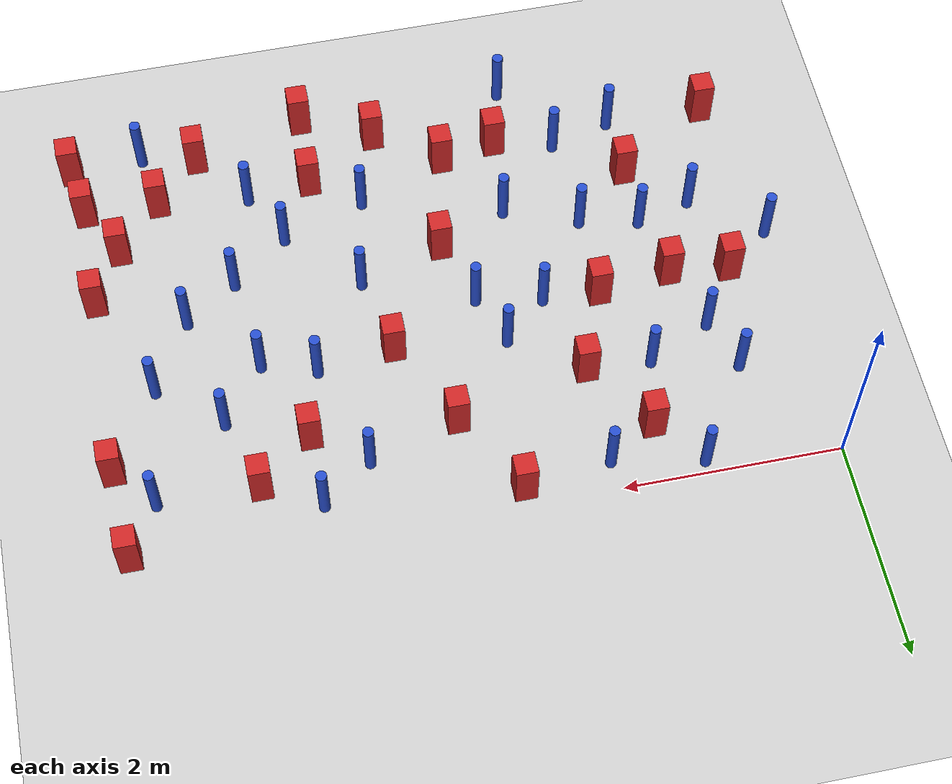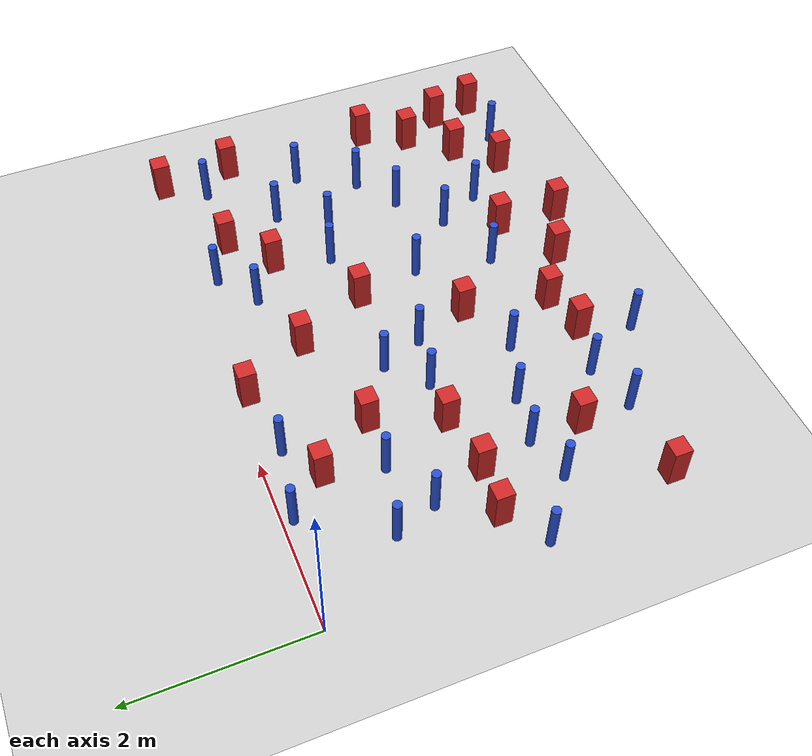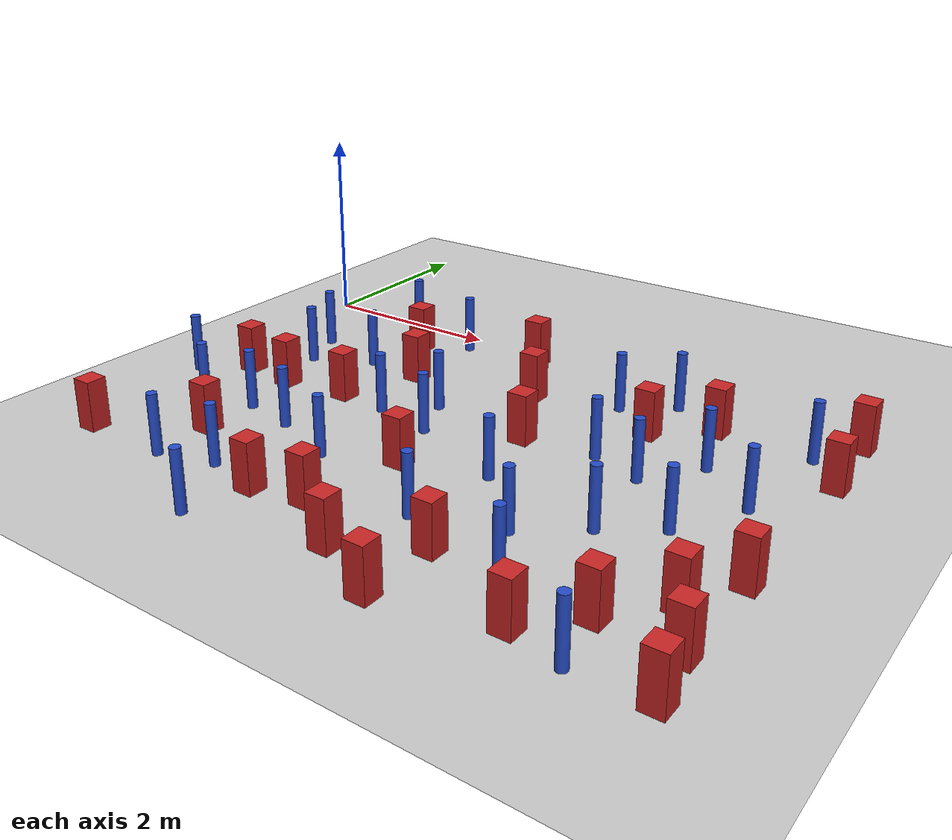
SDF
<sdf version="1.6">
 <world name="default">
  <model name="ground_plane">
   <static>1</static>
   <link name="link">
    <collision name="collision">
     <geometry><plane><normal>0 0 1</normal><size>100 100</size></plane></geometry>
     <surface><friction><ode><mu>100</mu><mu2>50</mu2></ode></friction></surface>
    </collision>
    <visual name="visual">
     <cast_shadows>0</cast_shadows>
     <geometry><plane><normal>0 0 1</normal><size>100 100</size></plane></geometry>
     <material>
      <ambient>1.0 1.0 1.0 1.0</ambient>
      <diffuse>0.8 0.8 0.8 1.0</diffuse>
      <specular>0.01 0.01 0.01 1.000000</specular>
     </material>
    </visual>
   </link>
  </model>
  <model name="pole_obstacle5">
   <static>true</static>
   <pose>4.95172508571 -1.85118535402 -9.47619616065e-06 5.49618799738e-07 2.36310414071e-07 -1.55090534796e-07</pose>
   <link name="link">
    <pose>0 0 0.3 0 -0 0</pose>
    <inertial>
     <mass>1</mass>
     <inertia><ixx>0.145833</ixx><ixy>0</ixy><ixz>0</ixz><iyy>0.145833</iyy><iyz>0</iyz><izz>0.125</izz></inertia>
    </inertial>
    <collision name="collision">
     <geometry><cylinder><radius>0.05</radius><length>.6</length></cylinder></geometry>
    </collision>
    <visual name="visual">
     <geometry><cylinder><radius>0.05</radius><length>.6</length></cylinder></geometry>
     <material>
      <script><name>Gazebo/Blue</name><uri>file://media/materials/scripts/gazebo.material</uri></script>
     </material>
    </visual>
   </link>
  </model>
  <model name="pole_obstacle10">
   <static>true</static>
   <pose>1.45750841201 -1.19569166545 -9.47619616065e-06 5.49618799737e-07 2.36310414065e-07 -1.55090534798e-07</pose>
   <link name="link">
    <pose>0 0 0.3 0 -0 0</pose>
    <inertial>
     <mass>1</mass>
     <inertia><ixx>0.145833</ixx><ixy>0</ixy><ixz>0</ixz><iyy>0.145833</iyy><iyz>0</iyz><izz>0.125</izz></inertia>
    </inertial>
    <collision name="collision">
     <geometry><cylinder><radius>0.05</radius><length>.6</length></cylinder></geometry>
    </collision>
    <visual name="visual">
     <geometry><cylinder><radius>0.05</radius><length>.6</length></cylinder></geometry>
     <material>
      <script><name>Gazebo/Blue</name><uri>file://media/materials/scripts/gazebo.material</uri></script>
     </material>
    </visual>
   </link>
  </model>
  <model name="pole_obstacle17">
   <static>true</static>
   <pose>4.79481528149 -3.70649466461 -9.47619616065e-06 5.49618799738e-07 2.36310414051e-07 -1.55090534805e-07</pose>
   <link name="link">
    <pose>0 0 0.3 0 -0 0</pose>
    <inertial>
     <mass>1</mass>
     <inertia><ixx>0.145833</ixx><ixy>0</ixy><ixz>0</ixz><iyy>0.145833</iyy><iyz>0</iyz><izz>0.125</izz></inertia>
    </inertial>
    <collision name="collision">
     <geometry><cylinder><radius>0.05</radius><length>.6</length></cylinder></geometry>
    </collision>
    <visual name="visual">
     <geometry><cylinder><radius>0.05</radius><length>.6</length></cylinder></geometry>
     <material>
      <script><name>Gazebo/Blue</name><uri>file://media/materials/scripts/gazebo.material</uri></script>
     </material>
    </visual>
   </link>
  </model>
  <model name="square_post_obstacle16">
   <static>true</static>
   <pose>1.61154432074 -0.550613531907 -6.11067671241e-07 -5.50515727128e-06 -8.79689657224e-07 2.37013304536e-05</pose>
   <link name="link">
    <pose>0 0 0.25 0 -0 0</pose>
    <inertial>
     <mass>100</mass>
     <inertia>
      <ixx>0.166667</ixx>
      <ixy>0</ixy>
      <ixz>0</ixz>
      <iyy>0.166667</iyy>
      <iyz>0</iyz>
      <izz>0.166667</izz>
     </inertia>
    </inertial>
    <collision name="collision"><geometry><box><size>.2 .2 .5</size></box></geometry></collision>
    <visual name="visual">
     <geometry><box><size>.2 .2 .5</size></box></geometry>
     <material>
      <script><name>Gazebo/Red</name><uri>file://media/materials/scripts/gazebo.material</uri></script>
     </material>
    </visual>
   </link>
  </model>
  <model name="pole_obstacle21">
   <static>true</static>
   <pose>0.676874485909 -0.999603426647 -9.47619616065e-06 5.49618799737e-07 2.36310414059e-07 -1.55090534802e-07</pose>
   <link name="link">
    <pose>0 0 0.3 0 -0 0</pose>
    <inertial>
     <mass>1</mass>
     <inertia><ixx>0.145833</ixx><ixy>0</ixy><ixz>0</ixz><iyy>0.145833</iyy><iyz>0</iyz><izz>0.125</izz></inertia>
    </inertial>
    <collision name="collision">
     <geometry><cylinder><radius>0.05</radius><length>.6</length></cylinder></geometry>
    </collision>
    <visual name="visual">
     <geometry><cylinder><radius>0.05</radius><length>.6</length></cylinder></geometry>
     <material>
      <script><name>Gazebo/Blue</name><uri>file://media/materials/scripts/gazebo.material</uri></script>
     </material>
    </visual>
   </link>
  </model>
  <model name="pole_obstacle26">
   <static>true</static>
   <pose>1.23101191874 -0.114247584651 -9.47619616065e-06 5.49618799737e-07 2.36310414064e-07 -1.55090534798e-07</pose>
   <link name="link">
    <pose>0 0 0.3 0 -0 0</pose>
    <inertial>
     <mass>1</mass>
     <inertia><ixx>0.145833</ixx><ixy>0</ixy><ixz>0</ixz><iyy>0.145833</iyy><iyz>0</iyz><izz>0.125</izz></inertia>
    </inertial>
    <collision name="collision">
     <geometry><cylinder><radius>0.05</radius><length>.6</length></cylinder></geometry>
    </collision>
    <visual name="visual">
     <geometry><cylinder><radius>0.05</radius><length>.6</length></cylinder></geometry>
     <material>
      <script><name>Gazebo/Blue</name><uri>file://media/materials/scripts/gazebo.material</uri></script>
     </material>
    </visual>
   </link>
  </model>
  <model name="square_post_obstacle19">
   <static>true</static>
   <pose>6.34187313873 -0.164902449762 -6.11067671241e-07 -5.50515727128e-06 -8.79689657224e-07 2.37013304536e-05</pose>
   <link name="link">
    <pose>0 0 0.25 0 -0 0</pose>
    <inertial>
     <mass>100</mass>
     <inertia>
      <ixx>0.166667</ixx>
      <ixy>0</ixy>
      <ixz>0</ixz>
      <iyy>0.166667</iyy>
      <iyz>0</iyz>
      <izz>0.166667</izz>
     </inertia>
    </inertial>
    <collision name="collision"><geometry><box><size>.2 .2 .5</size></box></geometry></collision>
    <visual name="visual">
     <geometry><box><size>.2 .2 .5</size></box></geometry>
     <material>
      <script><name>Gazebo/Red</name><uri>file://media/materials/scripts/gazebo.material</uri></script>
     </material>
    </visual>
   </link>
  </model>
  <model name="square_post_obstacle22">
   <static>true</static>
   <pose>3.73659770727 -1.78353197545 -6.11067671241e-07 -5.50515727128e-06 -8.79689657224e-07 2.37013304536e-05</pose>
   <link name="link">
    <pose>0 0 0.25 0 -0 0</pose>
    <inertial>
     <mass>100</mass>
     <inertia>
      <ixx>0.166667</ixx>
      <ixy>0</ixy>
      <ixz>0</ixz>
      <iyy>0.166667</iyy>
      <iyz>0</iyz>
      <izz>0.166667</izz>
     </inertia>
    </inertial>
    <collision name="collision"><geometry><box><size>.2 .2 .5</size></box></geometry></collision>
    <visual name="visual">
     <geometry><box><size>.2 .2 .5</size></box></geometry>
     <material>
      <script><name>Gazebo/Red</name><uri>file://media/materials/scripts/gazebo.material</uri></script>
     </material>
    </visual>
   </link>
  </model>
  <model name="pole_obstacle34">
   <static>true</static>
   <pose>2.69496736804 -1.6706195588 -9.47619616065e-06 5.49618799737e-07 2.36310414072e-07 -1.55090534793e-07</pose>
   <link name="link">
    <pose>0 0 0.3 0 -0 0</pose>
    <inertial>
     <mass>1</mass>
     <inertia><ixx>0.145833</ixx><ixy>0</ixy><ixz>0</ixz><iyy>0.145833</iyy><iyz>0</iyz><izz>0.125</izz></inertia>
    </inertial>
    <collision name="collision">
     <geometry><cylinder><radius>0.05</radius><length>.6</length></cylinder></geometry>
    </collision>
    <visual name="visual">
     <geometry><cylinder><radius>0.05</radius><length>.6</length></cylinder></geometry>
     <material>
      <script><name>Gazebo/Blue</name><uri>file://media/materials/scripts/gazebo.material</uri></script>
     </material>
    </visual>
   </link>
  </model>
  <model name="pole_obstacle36">
   <static>true</static>
   <pose>4.14793901936 -0.684810701725 -9.47619616065e-06 5.49618799737e-07 2.36310414061e-07 -1.550905348e-07</pose>
   <link name="link">
    <pose>0 0 0.3 0 -0 0</pose>
    <inertial>
     <mass>1</mass>
     <inertia><ixx>0.145833</ixx><ixy>0</ixy><ixz>0</ixz><iyy>0.145833</iyy><iyz>0</iyz><izz>0.125</izz></inertia>
    </inertial>
    <collision name="collision">
     <geometry><cylinder><radius>0.05</radius><length>.6</length></cylinder></geometry>
    </collision>
    <visual name="visual">
     <geometry><cylinder><radius>0.05</radius><length>.6</length></cylinder></geometry>
     <material>
      <script><name>Gazebo/Blue</name><uri>file://media/materials/scripts/gazebo.material</uri></script>
     </material>
    </visual>
   </link>
  </model>
  <model name="pole_obstacle48">
   <static>true</static>
   <pose>0.682920320842 -2.85017140973 -9.47619616065e-06 5.49618799737e-07 2.36310414066e-07 -1.55090534797e-07</pose>
   <link name="link">
    <pose>0 0 0.3 0 -0 0</pose>
    <inertial>
     <mass>1</mass>
     <inertia><ixx>0.145833</ixx><ixy>0</ixy><ixz>0</ixz><iyy>0.145833</iyy><iyz>0</iyz><izz>0.125</izz></inertia>
    </inertial>
    <collision name="collision">
     <geometry><cylinder><radius>0.05</radius><length>.6</length></cylinder></geometry>
    </collision>
    <visual name="visual">
     <geometry><cylinder><radius>0.05</radius><length>.6</length></cylinder></geometry>
     <material>
      <script><name>Gazebo/Blue</name><uri>file://media/materials/scripts/gazebo.material</uri></script>
     </material>
    </visual>
   </link>
  </model>
  <model name="pole_obstacle52">
   <static>true</static>
   <pose>3.73847682597 -3.45239358946 -9.47619616065e-06 5.49618799737e-07 2.36310414051e-07 -1.55090534807e-07</pose>
   <link name="link">
    <pose>0 0 0.3 0 -0 0</pose>
    <inertial>
     <mass>1</mass>
     <inertia><ixx>0.145833</ixx><ixy>0</ixy><ixz>0</ixz><iyy>0.145833</iyy><iyz>0</iyz><izz>0.125</izz></inertia>
    </inertial>
    <collision name="collision">
     <geometry><cylinder><radius>0.05</radius><length>.6</length></cylinder></geometry>
    </collision>
    <visual name="visual">
     <geometry><cylinder><radius>0.05</radius><length>.6</length></cylinder></geometry>
     <material>
      <script><name>Gazebo/Blue</name><uri>file://media/materials/scripts/gazebo.material</uri></script>
     </material>
    </visual>
   </link>
  </model>
  <model name="pole_obstacle54">
   <static>true</static>
   <pose>1.80257267331 -3.75496725329 -9.47619616065e-06 5.49618799737e-07 2.36310414062e-07 -1.55090534798e-07</pose>
   <link name="link">
    <pose>0 0 0.3 0 -0 0</pose>
    <inertial>
     <mass>1</mass>
     <inertia><ixx>0.145833</ixx><ixy>0</ixy><ixz>0</ixz><iyy>0.145833</iyy><iyz>0</iyz><izz>0.125</izz></inertia>
    </inertial>
    <collision name="collision">
     <geometry><cylinder><radius>0.05</radius><length>.6</length></cylinder></geometry>
    </collision>
    <visual name="visual">
     <geometry><cylinder><radius>0.05</radius><length>.6</length></cylinder></geometry>
     <material>
      <script><name>Gazebo/Blue</name><uri>file://media/materials/scripts/gazebo.material</uri></script>
     </material>
    </visual>
   </link>
  </model>
  <model name="square_post_obstacle46">
   <static>true</static>
   <pose>3.10497726021 -2.79621527098 -6.11067671241e-07 -5.50515727128e-06 -8.79689657224e-07 2.37013304536e-05</pose>
   <link name="link">
    <pose>0 0 0.25 0 -0 0</pose>
    <inertial>
     <mass>100</mass>
     <inertia>
      <ixx>0.166667</ixx>
      <ixy>0</ixy>
      <ixz>0</ixz>
      <iyy>0.166667</iyy>
      <iyz>0</iyz>
      <izz>0.166667</izz>
     </inertia>
    </inertial>
    <collision name="collision"><geometry><box><size>.2 .2 .5</size></box></geometry></collision>
    <visual name="visual">
     <geometry><box><size>.2 .2 .5</size></box></geometry>
     <material>
      <script><name>Gazebo/Red</name><uri>file://media/materials/scripts/gazebo.material</uri></script>
     </material>
    </visual>
   </link>
  </model>
  <model name="pole_obstacle69">
   <static>true</static>
   <pose>5.92841907202 -1.77144420455 -9.47619616065e-06 5.49618799738e-07 2.36310414071e-07 -1.55090534796e-07</pose>
   <link name="link">
    <pose>0 0 0.3 0 -0 0</pose>
    <inertial>
     <mass>1</mass>
     <inertia><ixx>0.145833</ixx><ixy>0</ixy><ixz>0</ixz><iyy>0.145833</iyy><iyz>0</iyz><izz>0.125</izz></inertia>
    </inertial>
    <collision name="collision">
     <geometry><cylinder><radius>0.05</radius><length>.6</length></cylinder></geometry>
    </collision>
    <visual name="visual">
     <geometry><cylinder><radius>0.05</radius><length>.6</length></cylinder></geometry>
     <material>
      <script><name>Gazebo/Blue</name><uri>file://media/materials/scripts/gazebo.material</uri></script>
     </material>
    </visual>
   </link>
  </model>
  <model name="pole_obstacle78">
   <static>true</static>
   <pose>2.05832854571 -0.269809136029 -9.4761961606e-06 5.49618799729e-07 2.36310414007e-07 -1.55090534821e-07</pose>
   <link name="link">
    <pose>0 0 0.3 0 -0 0</pose>
    <inertial>
     <mass>1</mass>
     <inertia><ixx>0.145833</ixx><ixy>0</ixy><ixz>0</ixz><iyy>0.145833</iyy><iyz>0</iyz><izz>0.125</izz></inertia>
    </inertial>
    <collision name="collision">
     <geometry><cylinder><radius>0.05</radius><length>.6</length></cylinder></geometry>
    </collision>
    <visual name="visual">
     <geometry><cylinder><radius>0.05</radius><length>.6</length></cylinder></geometry>
     <material>
      <script><name>Gazebo/Blue</name><uri>file://media/materials/scripts/gazebo.material</uri></script>
     </material>
    </visual>
   </link>
  </model>
  <model name="pole_obstacle82">
   <static>true</static>
   <pose>4.61594973983 -0.343727493922 -9.47619616065e-06 5.49618799737e-07 2.36310414057e-07 -1.55090534802e-07</pose>
   <link name="link">
    <pose>0 0 0.3 0 -0 0</pose>
    <inertial>
     <mass>1</mass>
     <inertia><ixx>0.145833</ixx><ixy>0</ixy><ixz>0</ixz><iyy>0.145833</iyy><iyz>0</iyz><izz>0.125</izz></inertia>
    </inertial>
    <collision name="collision">
     <geometry><cylinder><radius>0.05</radius><length>.6</length></cylinder></geometry>
    </collision>
    <visual name="visual">
     <geometry><cylinder><radius>0.05</radius><length>.6</length></cylinder></geometry>
     <material>
      <script><name>Gazebo/Blue</name><uri>file://media/materials/scripts/gazebo.material</uri></script>
     </material>
    </visual>
   </link>
  </model>
  <model name="square_post_obstacle77">
   <static>true</static>
   <pose>5.13319303135 -0.619160153615 -6.11067671241e-07 -5.50515727128e-06 -8.79689657224e-07 2.37013304536e-05</pose>
   <link name="link">
    <pose>0 0 0.25 0 -0 0</pose>
    <inertial>
     <mass>100</mass>
     <inertia>
      <ixx>0.166667</ixx>
      <ixy>0</ixy>
      <ixz>0</ixz>
      <iyy>0.166667</iyy>
      <iyz>0</iyz>
      <izz>0.166667</izz>
     </inertia>
    </inertial>
    <collision name="collision"><geometry><box><size>.2 .2 .5</size></box></geometry></collision>
    <visual name="visual">
     <geometry><box><size>.2 .2 .5</size></box></geometry>
     <material>
      <script><name>Gazebo/Red</name><uri>file://media/materials/scripts/gazebo.material</uri></script>
     </material>
    </visual>
   </link>
  </model>
  <model name="square_post_obstacle78">
   <static>true</static>
   <pose>4.6279912544 -1.03219666048 -6.11067671241e-07 -5.50515727128e-06 -8.79689657224e-07 2.37013304536e-05</pose>
   <link name="link">
    <pose>0 0 0.25 0 -0 0</pose>
    <inertial>
     <mass>100</mass>
     <inertia>
      <ixx>0.166667</ixx>
      <ixy>0</ixy>
      <ixz>0</ixz>
      <iyy>0.166667</iyy>
      <iyz>0</iyz>
      <izz>0.166667</izz>
     </inertia>
    </inertial>
    <collision name="collision"><geometry><box><size>.2 .2 .5</size></box></geometry></collision>
    <visual name="visual">
     <geometry><box><size>.2 .2 .5</size></box></geometry>
     <material>
      <script><name>Gazebo/Red</name><uri>file://media/materials/scripts/gazebo.material</uri></script>
     </material>
    </visual>
   </link>
  </model>
  <model name="square_post_obstacle80">
   <static>true</static>
   <pose>6.35218405869 -2.80016795398 -6.11067671241e-07 -5.50515727128e-06 -8.79689657224e-07 2.37013304536e-05</pose>
   <link name="link">
    <pose>0 0 0.25 0 -0 0</pose>
    <inertial>
     <mass>100</mass>
     <inertia>
      <ixx>0.166667</ixx>
      <ixy>0</ixy>
      <ixz>0</ixz>
      <iyy>0.166667</iyy>
      <iyz>0</iyz>
      <izz>0.166667</izz>
     </inertia>
    </inertial>
    <collision name="collision"><geometry><box><size>.2 .2 .5</size></box></geometry></collision>
    <visual name="visual">
     <geometry><box><size>.2 .2 .5</size></box></geometry>
     <material>
      <script><name>Gazebo/Red</name><uri>file://media/materials/scripts/gazebo.material</uri></script>
     </material>
    </visual>
   </link>
  </model>
  <model name="square_post_obstacle87">
   <static>true</static>
   <pose>1.21278866669 -3.30199473448 -6.11067671241e-07 -5.50515727128e-06 -8.79689657224e-07 2.37013304536e-05</pose>
   <link name="link">
    <pose>0 0 0.25 0 -0 0</pose>
    <inertial>
     <mass>100</mass>
     <inertia>
      <ixx>0.166667</ixx>
      <ixy>0</ixy>
      <ixz>0</ixz>
      <iyy>0.166667</iyy>
      <iyz>0</iyz>
      <izz>0.166667</izz>
     </inertia>
    </inertial>
    <collision name="collision"><geometry><box><size>.2 .2 .5</size></box></geometry></collision>
    <visual name="visual">
     <geometry><box><size>.2 .2 .5</size></box></geometry>
     <material>
      <script><name>Gazebo/Red</name><uri>file://media/materials/scripts/gazebo.material</uri></script>
     </material>
    </visual>
   </link>
  </model>
  <model name="pole_obstacle99">
   <static>true</static>
   <pose>5.06033901628 -2.77229231886 -9.47619616065e-06 5.49618799738e-07 2.36310414051e-07 -1.55090534805e-07</pose>
   <link name="link">
    <pose>0 0 0.3 0 -0 0</pose>
    <inertial>
     <mass>1</mass>
     <inertia><ixx>0.145833</ixx><ixy>0</ixy><ixz>0</ixz><iyy>0.145833</iyy><iyz>0</iyz><izz>0.125</izz></inertia>
    </inertial>
    <collision name="collision">
     <geometry><cylinder><radius>0.05</radius><length>.6</length></cylinder></geometry>
    </collision>
    <visual name="visual">
     <geometry><cylinder><radius>0.05</radius><length>.6</length></cylinder></geometry>
     <material>
      <script><name>Gazebo/Blue</name><uri>file://media/materials/scripts/gazebo.material</uri></script>
     </material>
    </visual>
   </link>
  </model>
  <model name="square_post_obstacle93">
   <static>true</static>
   <pose>1.76210077515 -2.00715900119 -6.11067671241e-07 -5.50515727128e-06 -8.79689657224e-07 2.37013304536e-05</pose>
   <link name="link">
    <pose>0 0 0.25 0 -0 0</pose>
    <inertial>
     <mass>100</mass>
     <inertia>
      <ixx>0.166667</ixx>
      <ixy>0</ixy>
      <ixz>0</ixz>
      <iyy>0.166667</iyy>
      <iyz>0</iyz>
      <izz>0.166667</izz>
     </inertia>
    </inertial>
    <collision name="collision"><geometry><box><size>.2 .2 .5</size></box></geometry></collision>
    <visual name="visual">
     <geometry><box><size>.2 .2 .5</size></box></geometry>
     <material>
      <script><name>Gazebo/Red</name><uri>file://media/materials/scripts/gazebo.material</uri></script>
     </material>
    </visual>
   </link>
  </model>
  <model name="square_post_obstacle94">
   <static>true</static>
   <pose>6.33520260074 -3.82298609255 -6.11067671241e-07 -5.50515727128e-06 -8.79689657224e-07 2.37013304536e-05</pose>
   <link name="link">
    <pose>0 0 0.25 0 -0 0</pose>
    <inertial>
     <mass>100</mass>
     <inertia>
      <ixx>0.166667</ixx>
      <ixy>0</ixy>
      <ixz>0</ixz>
      <iyy>0.166667</iyy>
      <iyz>0</iyz>
      <izz>0.166667</izz>
     </inertia>
    </inertial>
    <collision name="collision"><geometry><box><size>.2 .2 .5</size></box></geometry></collision>
    <visual name="visual">
     <geometry><box><size>.2 .2 .5</size></box></geometry>
     <material>
      <script><name>Gazebo/Red</name><uri>file://media/materials/scripts/gazebo.material</uri></script>
     </material>
    </visual>
   </link>
  </model>
  <model name="square_post_obstacle98">
   <static>true</static>
   <pose>2.86843303212 -0.163450395095 -6.11067671241e-07 -5.50515727128e-06 -8.79689657224e-07 2.37013304536e-05</pose>
   <link name="link">
    <pose>0 0 0.25 0 -0 0</pose>
    <inertial>
     <mass>100</mass>
     <inertia>
      <ixx>0.166667</ixx>
      <ixy>0</ixy>
      <ixz>0</ixz>
      <iyy>0.166667</iyy>
      <iyz>0</iyz>
      <izz>0.166667</izz>
     </inertia>
    </inertial>
    <collision name="collision"><geometry><box><size>.2 .2 .5</size></box></geometry></collision>
    <visual name="visual">
     <geometry><box><size>.2 .2 .5</size></box></geometry>
     <material>
      <script><name>Gazebo/Red</name><uri>file://media/materials/scripts/gazebo.material</uri></script>
     </material>
    </visual>
   </link>
  </model>
  <model name="square_post_obstacle102">
   <static>true</static>
   <pose>5.22437614991 -4.23858336716 -6.11067671241e-07 -5.50515727128e-06 -8.79689657224e-07 2.37013304536e-05</pose>
   <link name="link">
    <pose>0 0 0.25 0 -0 0</pose>
    <inertial>
     <mass>100</mass>
     <inertia>
      <ixx>0.166667</ixx>
      <ixy>0</ixy>
      <ixz>0</ixz>
      <iyy>0.166667</iyy>
      <iyz>0</iyz>
      <izz>0.166667</izz>
     </inertia>
    </inertial>
    <collision name="collision"><geometry><box><size>.2 .2 .5</size></box></geometry></collision>
    <visual name="visual">
     <geometry><box><size>.2 .2 .5</size></box></geometry>
     <material>
      <script><name>Gazebo/Red</name><uri>file://media/materials/scripts/gazebo.material</uri></script>
     </material>
    </visual>
   </link>
  </model>
  <model name="pole_obstacle107">
   <static>true</static>
   <pose>4.45292828203 -1.69123770534 -9.47619616065e-06 5.49618799738e-07 2.36310414071e-07 -1.55090534796e-07</pose>
   <link name="link">
    <pose>0 0 0.3 0 -0 0</pose>
    <inertial>
     <mass>1</mass>
     <inertia><ixx>0.145833</ixx><ixy>0</ixy><ixz>0</ixz><iyy>0.145833</iyy><iyz>0</iyz><izz>0.125</izz></inertia>
    </inertial>
    <collision name="collision">
     <geometry><cylinder><radius>0.05</radius><length>.6</length></cylinder></geometry>
    </collision>
    <visual name="visual">
     <geometry><cylinder><radius>0.05</radius><length>.6</length></cylinder></geometry>
     <material>
      <script><name>Gazebo/Blue</name><uri>file://media/materials/scripts/gazebo.material</uri></script>
     </material>
    </visual>
   </link>
  </model>
  <model name="square_post_obstacle108">
   <static>true</static>
   <pose>0.305026433567 -3.88540173138 -6.11067671241e-07 -5.50515727128e-06 -8.79689657224e-07 2.37013304536e-05</pose>
   <link name="link">
    <pose>0 0 0.25 0 -0 0</pose>
    <inertial>
     <mass>100</mass>
     <inertia>
      <ixx>0.166667</ixx>
      <ixy>0</ixy>
      <ixz>0</ixz>
      <iyy>0.166667</iyy>
      <iyz>0</iyz>
      <izz>0.166667</izz>
     </inertia>
    </inertial>
    <collision name="collision"><geometry><box><size>.2 .2 .5</size></box></geometry></collision>
    <visual name="visual">
     <geometry><box><size>.2 .2 .5</size></box></geometry>
     <material>
      <script><name>Gazebo/Red</name><uri>file://media/materials/scripts/gazebo.material</uri></script>
     </material>
    </visual>
   </link>
  </model>
  <model name="pole_obstacle114">
   <static>true</static>
   <pose>2.89225585667 -2.16553433011 -9.47619616065e-06 5.49618799737e-07 2.36310414051e-07 -1.55090534807e-07</pose>
   <link name="link">
    <pose>0 0 0.3 0 -0 0</pose>
    <inertial>
     <mass>1</mass>
     <inertia><ixx>0.145833</ixx><ixy>0</ixy><ixz>0</ixz><iyy>0.145833</iyy><iyz>0</iyz><izz>0.125</izz></inertia>
    </inertial>
    <collision name="collision">
     <geometry><cylinder><radius>0.05</radius><length>.6</length></cylinder></geometry>
    </collision>
    <visual name="visual">
     <geometry><cylinder><radius>0.05</radius><length>.6</length></cylinder></geometry>
     <material>
      <script><name>Gazebo/Blue</name><uri>file://media/materials/scripts/gazebo.material</uri></script>
     </material>
    </visual>
   </link>
  </model>
  <model name="square_post_obstacle115">
   <static>true</static>
   <pose>1.0711793638 -2.09318831763 -6.11067671241e-07 -5.50515727128e-06 -8.79689657224e-07 2.37013304536e-05</pose>
   <link name="link">
    <pose>0 0 0.25 0 -0 0</pose>
    <inertial>
     <mass>100</mass>
     <inertia>
      <ixx>0.166667</ixx>
      <ixy>0</ixy>
      <ixz>0</ixz>
      <iyy>0.166667</iyy>
      <iyz>0</iyz>
      <izz>0.166667</izz>
     </inertia>
    </inertial>
    <collision name="collision"><geometry><box><size>.2 .2 .5</size></box></geometry></collision>
    <visual name="visual">
     <geometry><box><size>.2 .2 .5</size></box></geometry>
     <material>
      <script><name>Gazebo/Red</name><uri>file://media/materials/scripts/gazebo.material</uri></script>
     </material>
    </visual>
   </link>
  </model>
  <model name="pole_obstacle126">
   <static>true</static>
   <pose>2.28000874461 -2.04302537196 -9.47619616065e-06 5.49618799737e-07 2.36310414068e-07 -1.55090534797e-07</pose>
   <link name="link">
    <pose>0 0 0.3 0 -0 0</pose>
    <inertial>
     <mass>1</mass>
     <inertia><ixx>0.145833</ixx><ixy>0</ixy><ixz>0</ixz><iyy>0.145833</iyy><iyz>0</iyz><izz>0.125</izz></inertia>
    </inertial>
    <collision name="collision">
     <geometry><cylinder><radius>0.05</radius><length>.6</length></cylinder></geometry>
    </collision>
    <visual name="visual">
     <geometry><cylinder><radius>0.05</radius><length>.6</length></cylinder></geometry>
     <material>
      <script><name>Gazebo/Blue</name><uri>file://media/materials/scripts/gazebo.material</uri></script>
     </material>
    </visual>
   </link>
  </model>
  <model name="square_post_obstacle124">
   <static>true</static>
   <pose>5.64542207781 -3.79890160198 -6.11067671241e-07 -5.50515727128e-06 -8.79689657224e-07 2.37013304536e-05</pose>
   <link name="link">
    <pose>0 0 0.25 0 -0 0</pose>
    <inertial>
     <mass>100</mass>
     <inertia>
      <ixx>0.166667</ixx>
      <ixy>0</ixy>
      <ixz>0</ixz>
      <iyy>0.166667</iyy>
      <iyz>0</iyz>
      <izz>0.166667</izz>
     </inertia>
    </inertial>
    <collision name="collision"><geometry><box><size>.2 .2 .5</size></box></geometry></collision>
    <visual name="visual">
     <geometry><box><size>.2 .2 .5</size></box></geometry>
     <material>
      <script><name>Gazebo/Red</name><uri>file://media/materials/scripts/gazebo.material</uri></script>
     </material>
    </visual>
   </link>
  </model>
  <model name="square_post_obstacle132">
   <static>true</static>
   <pose>4.1700933661 -4.50783122786 -6.11067671241e-07 -5.50515727128e-06 -8.79689657224e-07 2.37013304536e-05</pose>
   <link name="link">
    <pose>0 0 0.25 0 -0 0</pose>
    <inertial>
     <mass>100</mass>
     <inertia>
      <ixx>0.166667</ixx>
      <ixy>0</ixy>
      <ixz>0</ixz>
      <iyy>0.166667</iyy>
      <iyz>0</iyz>
      <izz>0.166667</izz>
     </inertia>
    </inertial>
    <collision name="collision"><geometry><box><size>.2 .2 .5</size></box></geometry></collision>
    <visual name="visual">
     <geometry><box><size>.2 .2 .5</size></box></geometry>
     <material>
      <script><name>Gazebo/Red</name><uri>file://media/materials/scripts/gazebo.material</uri></script>
     </material>
    </visual>
   </link>
  </model>
  <model name="pole_obstacle133">
   <static>true</static>
   <pose>0.85720903986 -1.48252596466 -9.47619616065e-06 5.49618799738e-07 2.36310414061e-07 -1.55090534801e-07</pose>
   <link name="link">
    <pose>0 0 0.3 0 -0 0</pose>
    <inertial>
     <mass>1</mass>
     <inertia><ixx>0.145833</ixx><ixy>0</ixy><ixz>0</ixz><iyy>0.145833</iyy><iyz>0</iyz><izz>0.125</izz></inertia>
    </inertial>
    <collision name="collision">
     <geometry><cylinder><radius>0.05</radius><length>.6</length></cylinder></geometry>
    </collision>
    <visual name="visual">
     <geometry><cylinder><radius>0.05</radius><length>.6</length></cylinder></geometry>
     <material>
      <script><name>Gazebo/Blue</name><uri>file://media/materials/scripts/gazebo.material</uri></script>
     </material>
    </visual>
   </link>
  </model>
  <model name="pole_obstacle136">
   <static>true</static>
   <pose>5.73886659156 -4.36572449398 -9.47619616065e-06 5.49618799737e-07 2.36310414037e-07 -1.55090534814e-07</pose>
   <link name="link">
    <pose>0 0 0.3 0 -0 0</pose>
    <inertial>
     <mass>1</mass>
     <inertia><ixx>0.145833</ixx><ixy>0</ixy><ixz>0</ixz><iyy>0.145833</iyy><iyz>0</iyz><izz>0.125</izz></inertia>
    </inertial>
    <collision name="collision">
     <geometry><cylinder><radius>0.05</radius><length>.6</length></cylinder></geometry>
    </collision>
    <visual name="visual">
     <geometry><cylinder><radius>0.05</radius><length>.6</length></cylinder></geometry>
     <material>
      <script><name>Gazebo/Blue</name><uri>file://media/materials/scripts/gazebo.material</uri></script>
     </material>
    </visual>
   </link>
  </model>
  <model name="square_post_obstacle136">
   <static>true</static>
   <pose>4.1963259807 -3.76477503068 -6.11067671241e-07 -5.50515727128e-06 -8.79689657224e-07 2.37013304536e-05</pose>
   <link name="link">
    <pose>0 0 0.25 0 -0 0</pose>
    <inertial>
     <mass>100</mass>
     <inertia>
      <ixx>0.166667</ixx>
      <ixy>0</ixy>
      <ixz>0</ixz>
      <iyy>0.166667</iyy>
      <iyz>0</iyz>
      <izz>0.166667</izz>
     </inertia>
    </inertial>
    <collision name="collision"><geometry><box><size>.2 .2 .5</size></box></geometry></collision>
    <visual name="visual">
     <geometry><box><size>.2 .2 .5</size></box></geometry>
     <material>
      <script><name>Gazebo/Red</name><uri>file://media/materials/scripts/gazebo.material</uri></script>
     </material>
    </visual>
   </link>
  </model>
  <model name="square_post_obstacle140">
   <static>true</static>
   <pose>3.50963374184 -4.18610841187 -6.11067671241e-07 -5.50515727128e-06 -8.79689657224e-07 2.37013304536e-05</pose>
   <link name="link">
    <pose>0 0 0.25 0 -0 0</pose>
    <inertial>
     <mass>100</mass>
     <inertia>
      <ixx>0.166667</ixx>
      <ixy>0</ixy>
      <ixz>0</ixz>
      <iyy>0.166667</iyy>
      <iyz>0</iyz>
      <izz>0.166667</izz>
     </inertia>
    </inertial>
    <collision name="collision"><geometry><box><size>.2 .2 .5</size></box></geometry></collision>
    <visual name="visual">
     <geometry><box><size>.2 .2 .5</size></box></geometry>
     <material>
      <script><name>Gazebo/Red</name><uri>file://media/materials/scripts/gazebo.material</uri></script>
     </material>
    </visual>
   </link>
  </model>
  <model name="square_post_obstacle142">
   <static>true</static>
   <pose>6.3914895184 -1.01813330005 -6.11067671241e-07 -5.50515727128e-06 -8.79689657224e-07 2.37013304536e-05</pose>
   <link name="link">
    <pose>0 0 0.25 0 -0 0</pose>
    <inertial>
     <mass>100</mass>
     <inertia>
      <ixx>0.166667</ixx>
      <ixy>0</ixy>
      <ixz>0</ixz>
      <iyy>0.166667</iyy>
      <iyz>0</iyz>
      <izz>0.166667</izz>
     </inertia>
    </inertial>
    <collision name="collision"><geometry><box><size>.2 .2 .5</size></box></geometry></collision>
    <visual name="visual">
     <geometry><box><size>.2 .2 .5</size></box></geometry>
     <material>
      <script><name>Gazebo/Red</name><uri>file://media/materials/scripts/gazebo.material</uri></script>
     </material>
    </visual>
   </link>
  </model>
  <model name="pole_obstacle153">
   <static>true</static>
   <pose>5.35536219556 -1.32109661325 -9.47619616065e-06 5.49618799738e-07 2.36310414071e-07 -1.55090534796e-07</pose>
   <link name="link">
    <pose>0 0 0.3 0 -0 0</pose>
    <inertial>
     <mass>1</mass>
     <inertia><ixx>0.145833</ixx><ixy>0</ixy><ixz>0</ixz><iyy>0.145833</iyy><iyz>0</iyz><izz>0.125</izz></inertia>
    </inertial>
    <collision name="collision">
     <geometry><cylinder><radius>0.05</radius><length>.6</length></cylinder></geometry>
    </collision>
    <visual name="visual">
     <geometry><cylinder><radius>0.05</radius><length>.6</length></cylinder></geometry>
     <material>
      <script><name>Gazebo/Blue</name><uri>file://media/materials/scripts/gazebo.material</uri></script>
     </material>
    </visual>
   </link>
  </model>
  <model name="pole_obstacle159">
   <static>true</static>
   <pose>2.20050009592 -4.47995269192 -9.47619616065e-06 5.49618799738e-07 2.3631041406e-07 -1.55090534801e-07</pose>
   <link name="link">
    <pose>0 0 0.3 0 -0 0</pose>
    <inertial>
     <mass>1</mass>
     <inertia><ixx>0.145833</ixx><ixy>0</ixy><ixz>0</ixz><iyy>0.145833</iyy><iyz>0</iyz><izz>0.125</izz></inertia>
    </inertial>
    <collision name="collision">
     <geometry><cylinder><radius>0.05</radius><length>.6</length></cylinder></geometry>
    </collision>
    <visual name="visual">
     <geometry><cylinder><radius>0.05</radius><length>.6</length></cylinder></geometry>
     <material>
      <script><name>Gazebo/Blue</name><uri>file://media/materials/scripts/gazebo.material</uri></script>
     </material>
    </visual>
   </link>
  </model>
  <model name="square_post_obstacle155">
   <static>true</static>
   <pose>2.90826766476 -3.77782892831 -6.11067671241e-07 -5.50515727128e-06 -8.79689657224e-07 2.37013304536e-05</pose>
   <link name="link">
    <pose>0 0 0.25 0 -0 0</pose>
    <inertial>
     <mass>100</mass>
     <inertia>
      <ixx>0.166667</ixx>
      <ixy>0</ixy>
      <ixz>0</ixz>
      <iyy>0.166667</iyy>
      <iyz>0</iyz>
      <izz>0.166667</izz>
     </inertia>
    </inertial>
    <collision name="collision"><geometry><box><size>.2 .2 .5</size></box></geometry></collision>
    <visual name="visual">
     <geometry><box><size>.2 .2 .5</size></box></geometry>
     <material>
      <script><name>Gazebo/Red</name><uri>file://media/materials/scripts/gazebo.material</uri></script>
     </material>
    </visual>
   </link>
  </model>
  <model name="square_post_obstacle159">
   <static>true</static>
   <pose>2.06518324139 -1.22501264565 -6.11067671241e-07 -5.50515727128e-06 -8.79689657224e-07 2.37013304536e-05</pose>
   <link name="link">
    <pose>0 0 0.25 0 -0 0</pose>
    <inertial>
     <mass>100</mass>
     <inertia>
      <ixx>0.166667</ixx>
      <ixy>0</ixy>
      <ixz>0</ixz>
      <iyy>0.166667</iyy>
      <iyz>0</iyz>
      <izz>0.166667</izz>
     </inertia>
    </inertial>
    <collision name="collision"><geometry><box><size>.2 .2 .5</size></box></geometry></collision>
    <visual name="visual">
     <geometry><box><size>.2 .2 .5</size></box></geometry>
     <material>
      <script><name>Gazebo/Red</name><uri>file://media/materials/scripts/gazebo.material</uri></script>
     </material>
    </visual>
   </link>
  </model>
  <model name="square_post_obstacle160">
   <static>true</static>
   <pose>0.51215738458 -2.03102912959 -6.11067671241e-07 -5.50515727128e-06 -8.79689657224e-07 2.37013304536e-05</pose>
   <link name="link">
    <pose>0 0 0.25 0 -0 0</pose>
    <inertial>
     <mass>100</mass>
     <inertia>
      <ixx>0.166667</ixx>
      <ixy>0</ixy>
      <ixz>0</ixz>
      <iyy>0.166667</iyy>
      <iyz>0</iyz>
      <izz>0.166667</izz>
     </inertia>
    </inertial>
    <collision name="collision"><geometry><box><size>.2 .2 .5</size></box></geometry></collision>
    <visual name="visual">
     <geometry><box><size>.2 .2 .5</size></box></geometry>
     <material>
      <script><name>Gazebo/Red</name><uri>file://media/materials/scripts/gazebo.material</uri></script>
     </material>
    </visual>
   </link>
  </model>
  <model name="square_post_obstacle167">
   <static>true</static>
   <pose>6.41325176921 -4.33422399666 -6.11067671241e-07 -5.50515727128e-06 -8.79689657224e-07 2.37013304536e-05</pose>
   <link name="link">
    <pose>0 0 0.25 0 -0 0</pose>
    <inertial>
     <mass>100</mass>
     <inertia>
      <ixx>0.166667</ixx>
      <ixy>0</ixy>
      <ixz>0</ixz>
      <iyy>0.166667</iyy>
      <iyz>0</iyz>
      <izz>0.166667</izz>
     </inertia>
    </inertial>
    <collision name="collision"><geometry><box><size>.2 .2 .5</size></box></geometry></collision>
    <visual name="visual">
     <geometry><box><size>.2 .2 .5</size></box></geometry>
     <material>
      <script><name>Gazebo/Red</name><uri>file://media/materials/scripts/gazebo.material</uri></script>
     </material>
    </visual>
   </link>
  </model>
  <model name="pole_obstacle171">
   <static>true</static>
   <pose>1.22642531749 -3.91276963413 -9.47619616065e-06 5.49618799737e-07 2.36310414062e-07 -1.55090534798e-07</pose>
   <link name="link">
    <pose>0 0 0.3 0 -0 0</pose>
    <inertial>
     <mass>1</mass>
     <inertia><ixx>0.145833</ixx><ixy>0</ixy><ixz>0</ixz><iyy>0.145833</iyy><iyz>0</iyz><izz>0.125</izz></inertia>
    </inertial>
    <collision name="collision">
     <geometry><cylinder><radius>0.05</radius><length>.6</length></cylinder></geometry>
    </collision>
    <visual name="visual">
     <geometry><cylinder><radius>0.05</radius><length>.6</length></cylinder></geometry>
     <material>
      <script><name>Gazebo/Blue</name><uri>file://media/materials/scripts/gazebo.material</uri></script>
     </material>
    </visual>
   </link>
  </model>
  <model name="pole_obstacle177">
   <static>true</static>
   <pose>1.75089756442 -2.82539737976 -9.47619616065e-06 5.49618799737e-07 2.36310414062e-07 -1.55090534798e-07</pose>
   <link name="link">
    <pose>0 0 0.3 0 -0 0</pose>
    <inertial>
     <mass>1</mass>
     <inertia><ixx>0.145833</ixx><ixy>0</ixy><ixz>0</ixz><iyy>0.145833</iyy><iyz>0</iyz><izz>0.125</izz></inertia>
    </inertial>
    <collision name="collision">
     <geometry><cylinder><radius>0.05</radius><length>.6</length></cylinder></geometry>
    </collision>
    <visual name="visual">
     <geometry><cylinder><radius>0.05</radius><length>.6</length></cylinder></geometry>
     <material>
      <script><name>Gazebo/Blue</name><uri>file://media/materials/scripts/gazebo.material</uri></script>
     </material>
    </visual>
   </link>
  </model>
  <model name="pole_obstacle178">
   <static>true</static>
   <pose>0.0530232044073 -2.37247997304 -9.4761961606e-06 5.49618799729e-07 2.36310413998e-07 -1.55090534825e-07</pose>
   <link name="link">
    <pose>0 0 0.3 0 -0 0</pose>
    <inertial>
     <mass>1</mass>
     <inertia><ixx>0.145833</ixx><ixy>0</ixy><ixz>0</ixz><iyy>0.145833</iyy><iyz>0</iyz><izz>0.125</izz></inertia>
    </inertial>
    <collision name="collision">
     <geometry><cylinder><radius>0.05</radius><length>.6</length></cylinder></geometry>
    </collision>
    <visual name="visual">
     <geometry><cylinder><radius>0.05</radius><length>.6</length></cylinder></geometry>
     <material>
      <script><name>Gazebo/Blue</name><uri>file://media/materials/scripts/gazebo.material</uri></script>
     </material>
    </visual>
   </link>
  </model>
  <model name="square_post_obstacle179">
   <static>true</static>
   <pose>2.37502548521 -3.88306360663 -6.11067671241e-07 -5.50515727128e-06 -8.79689657224e-07 2.37013304536e-05</pose>
   <link name="link">
    <pose>0 0 0.25 0 -0 0</pose>
    <inertial>
     <mass>100</mass>
     <inertia>
      <ixx>0.166667</ixx>
      <ixy>0</ixy>
      <ixz>0</ixz>
      <iyy>0.166667</iyy>
      <iyz>0</iyz>
      <izz>0.166667</izz>
     </inertia>
    </inertial>
    <collision name="collision"><geometry><box><size>.2 .2 .5</size></box></geometry></collision>
    <visual name="visual">
     <geometry><box><size>.2 .2 .5</size></box></geometry>
     <material>
      <script><name>Gazebo/Red</name><uri>file://media/materials/scripts/gazebo.material</uri></script>
     </material>
    </visual>
   </link>
  </model>
  <model name="pole_obstacle182">
   <static>true</static>
   <pose>2.43752276158 -3.0838228358 -9.47619616065e-06 5.49618799737e-07 2.36310414051e-07 -1.55090534807e-07</pose>
   <link name="link">
    <pose>0 0 0.3 0 -0 0</pose>
    <inertial>
     <mass>1</mass>
     <inertia><ixx>0.145833</ixx><ixy>0</ixy><ixz>0</ixz><iyy>0.145833</iyy><iyz>0</iyz><izz>0.125</izz></inertia>
    </inertial>
    <collision name="collision">
     <geometry><cylinder><radius>0.05</radius><length>.6</length></cylinder></geometry>
    </collision>
    <visual name="visual">
     <geometry><cylinder><radius>0.05</radius><length>.6</length></cylinder></geometry>
     <material>
      <script><name>Gazebo/Blue</name><uri>file://media/materials/scripts/gazebo.material</uri></script>
     </material>
    </visual>
   </link>
  </model>
  <model name="pole_obstacle185">
   <static>true</static>
   <pose>5.54972822458 -2.43749358751 -9.47619616065e-06 5.49618799738e-07 2.36310414051e-07 -1.55090534805e-07</pose>
   <link name="link">
    <pose>0 0 0.3 0 -0 0</pose>
    <inertial>
     <mass>1</mass>
     <inertia><ixx>0.145833</ixx><ixy>0</ixy><ixz>0</ixz><iyy>0.145833</iyy><iyz>0</iyz><izz>0.125</izz></inertia>
    </inertial>
    <collision name="collision">
     <geometry><cylinder><radius>0.05</radius><length>.6</length></cylinder></geometry>
    </collision>
    <visual name="visual">
     <geometry><cylinder><radius>0.05</radius><length>.6</length></cylinder></geometry>
     <material>
      <script><name>Gazebo/Blue</name><uri>file://media/materials/scripts/gazebo.material</uri></script>
     </material>
    </visual>
   </link>
  </model>
  <model name="square_post_obstacle187">
   <static>true</static>
   <pose>3.31358179006 -0.935405863273 -6.11067671241e-07 -5.50515727128e-06 -8.79689657224e-07 2.37013304536e-05</pose>
   <link name="link">
    <pose>0 0 0.25 0 -0 0</pose>
    <inertial>
     <mass>100</mass>
     <inertia>
      <ixx>0.166667</ixx>
      <ixy>0</ixy>
      <ixz>0</ixz>
      <iyy>0.166667</iyy>
      <iyz>0</iyz>
      <izz>0.166667</izz>
     </inertia>
    </inertial>
    <collision name="collision"><geometry><box><size>.2 .2 .5</size></box></geometry></collision>
    <visual name="visual">
     <geometry><box><size>.2 .2 .5</size></box></geometry>
     <material>
      <script><name>Gazebo/Red</name><uri>file://media/materials/scripts/gazebo.material</uri></script>
     </material>
    </visual>
   </link>
  </model>
  <model name="square_post_obstacle188">
   <static>true</static>
   <pose>6.06959394109 -3.32322236334 -6.11067671241e-07 -5.50515727128e-06 -8.79689657224e-07 2.37013304536e-05</pose>
   <link name="link">
    <pose>0 0 0.25 0 -0 0</pose>
    <inertial>
     <mass>100</mass>
     <inertia>
      <ixx>0.166667</ixx>
      <ixy>0</ixy>
      <ixz>0</ixz>
      <iyy>0.166667</iyy>
      <iyz>0</iyz>
      <izz>0.166667</izz>
     </inertia>
    </inertial>
    <collision name="collision"><geometry><box><size>.2 .2 .5</size></box></geometry></collision>
    <visual name="visual">
     <geometry><box><size>.2 .2 .5</size></box></geometry>
     <material>
      <script><name>Gazebo/Red</name><uri>file://media/materials/scripts/gazebo.material</uri></script>
     </material>
    </visual>
   </link>
  </model>
  <model name="pole_obstacle187">
   <static>true</static>
   <pose>4.52671140879 -3.18317959209 -9.47619616065e-06 5.49618799738e-07 2.36310414051e-07 -1.55090534805e-07</pose>
   <link name="link">
    <pose>0 0 0.3 0 -0 0</pose>
    <inertial>
     <mass>1</mass>
     <inertia><ixx>0.145833</ixx><ixy>0</ixy><ixz>0</ixz><iyy>0.145833</iyy><iyz>0</iyz><izz>0.125</izz></inertia>
    </inertial>
    <collision name="collision">
     <geometry><cylinder><radius>0.05</radius><length>.6</length></cylinder></geometry>
    </collision>
    <visual name="visual">
     <geometry><cylinder><radius>0.05</radius><length>.6</length></cylinder></geometry>
     <material>
      <script><name>Gazebo/Blue</name><uri>file://media/materials/scripts/gazebo.material</uri></script>
     </material>
    </visual>
   </link>
  </model>
  <model name="pole_obstacle218">
   <static>true</static>
   <pose>1.19780428441 -2.71401664757 -9.47619616065e-06 5.49618799737e-07 2.36310414062e-07 -1.55090534798e-07</pose>
   <link name="link">
    <pose>0 0 0.3 0 -0 0</pose>
    <inertial>
     <mass>1</mass>
     <inertia><ixx>0.145833</ixx><ixy>0</ixy><ixz>0</ixz><iyy>0.145833</iyy><iyz>0</iyz><izz>0.125</izz></inertia>
    </inertial>
    <collision name="collision">
     <geometry><cylinder><radius>0.05</radius><length>.6</length></cylinder></geometry>
    </collision>
    <visual name="visual">
     <geometry><cylinder><radius>0.05</radius><length>.6</length></cylinder></geometry>
     <material>
      <script><name>Gazebo/Blue</name><uri>file://media/materials/scripts/gazebo.material</uri></script>
     </material>
    </visual>
   </link>
  </model>
  <model name="pole_obstacle219">
   <static>true</static>
   <pose>6.05879461041 -0.641839548038 -9.47619616065e-06 5.49618799737e-07 2.36310414061e-07 -1.550905348e-07</pose>
   <link name="link">
    <pose>0 0 0.3 0 -0 0</pose>
    <inertial>
     <mass>1</mass>
     <inertia><ixx>0.145833</ixx><ixy>0</ixy><ixz>0</ixz><iyy>0.145833</iyy><iyz>0</iyz><izz>0.125</izz></inertia>
    </inertial>
    <collision name="collision">
     <geometry><cylinder><radius>0.05</radius><length>.6</length></cylinder></geometry>
    </collision>
    <visual name="visual">
     <geometry><cylinder><radius>0.05</radius><length>.6</length></cylinder></geometry>
     <material>
      <script><name>Gazebo/Blue</name><uri>file://media/materials/scripts/gazebo.material</uri></script>
     </material>
    </visual>
   </link>
  </model>
  <model name="pole_obstacle223">
   <static>true</static>
   <pose>3.8970823314 -2.55019578423 -9.47619616065e-06 5.49618799737e-07 2.36310414051e-07 -1.55090534807e-07</pose>
   <link name="link">
    <pose>0 0 0.3 0 -0 0</pose>
    <inertial>
     <mass>1</mass>
     <inertia><ixx>0.145833</ixx><ixy>0</ixy><ixz>0</ixz><iyy>0.145833</iyy><iyz>0</iyz><izz>0.125</izz></inertia>
    </inertial>
    <collision name="collision">
     <geometry><cylinder><radius>0.05</radius><length>.6</length></cylinder></geometry>
    </collision>
    <visual name="visual">
     <geometry><cylinder><radius>0.05</radius><length>.6</length></cylinder></geometry>
     <material>
      <script><name>Gazebo/Blue</name><uri>file://media/materials/scripts/gazebo.material</uri></script>
     </material>
    </visual>
   </link>
  </model>
 </world>
</sdf>
